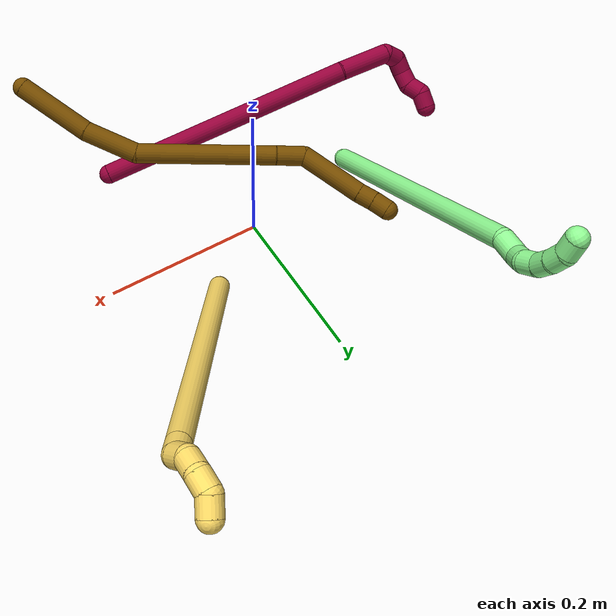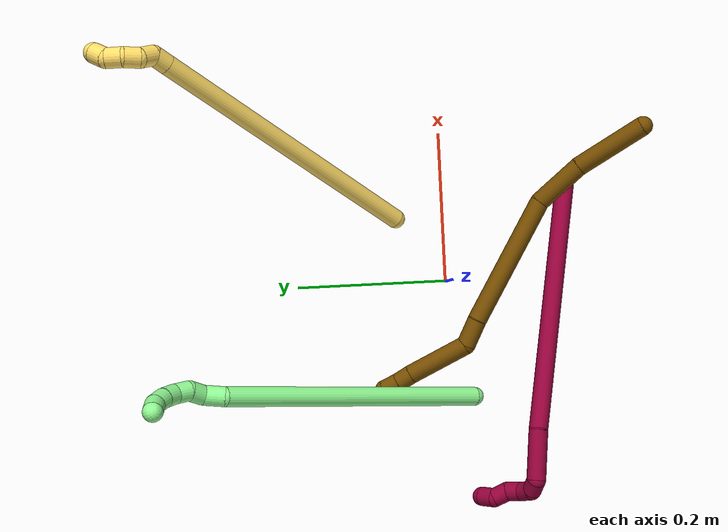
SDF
<sdf version="1.7">
 <world name="default">
  <model name="photoneo_s_sensor">
   <static>1</static>
   <pose>0 0 2 1.57079 1.57079 3.14159</pose>
   <link name="link">
    <inertial><mass>0.1</mass></inertial>
    <sensor name="sensor" type="depth">
     <update_rate>30</update_rate>
     <camera>
      <horizontal_fov>1.22</horizontal_fov>
      <image><width>1920</width><height>1200</height><format>B8G8R8</format></image>
      <clip><near>0.1</near><far>4</far></clip>
      <depth_camera><output>points</output></depth_camera>
     </camera>
     <plugin name="camera_plugin" filename="libgazebo_ros_depth_camera.so">
      <baseline>0.2</baseline>
      <alwaysOn>1</alwaysOn>
      <updateRate>0.0</updateRate>
      <cameraName>camera_ir</cameraName>
      <imageTopicName>/camera/color/image_raw</imageTopicName>
      <cameraInfoTopicName>/camera/color/camera_info</cameraInfoTopicName>
      <depthImageTopicName>/camera/depth/image_raw</depthImageTopicName>
      <depthImageCameraInfoTopicName>/camera/depth/camera_info</depthImageCameraInfoTopicName>
      <pointCloudTopicName>/camera/depth/points</pointCloudTopicName>
      <frameName>fr_optical</frameName>
      <pointCloudCutoff>0.1</pointCloudCutoff>
      <pointCloudCutoffMax>2.0</pointCloudCutoffMax>
      <distortionK1>0</distortionK1>
      <distortionK2>0</distortionK2>
      <distortionK3>0</distortionK3>
      <distortionT1>0</distortionT1>
      <distortionT2>0</distortionT2>
      <CxPrime>0</CxPrime>
      <Cx>0</Cx>
      <Cy>0</Cy>
      <focalLength>0</focalLength>
      <hackBaseline>0</hackBaseline>
     </plugin>
    </sensor>
   </link>
  </model>
  <model name="bin">
   <static>1</static>
   <link name="bottom">
    <collision name="collision-bottom">
     <pose>0 0 -0.01 0 -0 0</pose>
     <geometry><box><size>0.8 0.6 0.02</size></box></geometry>
     <surface>
      <friction><ode><mu>100</mu><mu2>100</mu2></ode></friction>
      <contact><collide_bitmask>65535</collide_bitmask></contact>
     </surface>
    </collision>
   </link>
   <link name="west_wall">
    <collision name="collision-west_wall">
     <pose>-0.41 0 0.1 0 -0 0</pose>
     <geometry><box><size>0.02 0.6 0.2</size></box></geometry>
     <surface>
      <friction><ode><mu>100</mu><mu2>100</mu2></ode></friction>
      <contact><collide_bitmask>65535</collide_bitmask></contact>
     </surface>
    </collision>
   </link>
   <link name="east_wall">
    <collision name="collision-east_wall">
     <pose>0.41 0 0.1 0 -0 0</pose>
     <geometry><box><size>0.02 0.6 0.2</size></box></geometry>
     <surface>
      <friction><ode><mu>100</mu><mu2>100</mu2></ode></friction>
      <contact><collide_bitmask>65535</collide_bitmask></contact>
     </surface>
    </collision>
   </link>
   <link name="south_wall">
    <collision name="collision-south_wall">
     <pose>0 -0.31 0.1 0 -0 0</pose>
     <geometry><box><size>0.8 0.02 0.2</size></box></geometry>
     <surface>
      <friction><ode><mu>100</mu><mu2>100</mu2></ode></friction>
      <contact><collide_bitmask>65535</collide_bitmask></contact>
     </surface>
    </collision>
   </link>
   <link name="north_wall">
    <collision name="collision-north_wall">
     <pose>0 0.31 0.1 0 -0 0</pose>
     <geometry><box><size>0.8 0.02 0.2</size></box></geometry>
     <surface>
      <friction><ode><mu>100</mu><mu2>100</mu2></ode></friction>
      <contact><collide_bitmask>65535</collide_bitmask></contact>
     </surface>
    </collision>
   </link>
  </model>
  <model name="5">
   <static>0</static>
   <link name="5">
    <collision name="collision-cylinder-e_1_1_4">
     <pose>-0.00947 -0.030676 0.196534 0.154836 -0.047575 -0.003691</pose>
     <geometry><cylinder><radius>0.0125</radius><length>0.398277</length></cylinder></geometry>
     <surface>
      <friction><ode><mu>1.16</mu><mu2>1.16</mu2><slip1>0</slip1><slip2>0</slip2></ode></friction>
      <contact><ode><kp>1e+06</kp><kd>1</kd><max_vel>0</max_vel><min_depth>0.001</min_depth></ode></contact>
     </surface>
    </collision>
    <visual name="visual-cylinder-e_1_1_4">
     <pose>-0.00947 -0.030676 0.196534 0.154836 -0.047575 -0.003691</pose>
     <geometry><cylinder><radius>0.0125</radius><length>0.398277</length></cylinder></geometry>
     <material><ambient>1 0.858824 0.4 1</ambient></material>
    </visual>
    <collision name="collision-cylinder-e_2_4_5">
     <pose>-0.019384 -0.062926 0.403156 0.154717 -0.043326 -0.003359</pose>
     <geometry><cylinder><radius>0.0125</radius><length>0.020441</length></cylinder></geometry>
     <surface>
      <friction><ode><mu>1.16</mu><mu2>1.16</mu2><slip1>0</slip1><slip2>0</slip2></ode></friction>
      <contact><ode><kp>1e+06</kp><kd>1</kd><max_vel>0</max_vel><min_depth>0.001</min_depth></ode></contact>
     </surface>
    </collision>
    <visual name="visual-cylinder-e_2_4_5">
     <pose>-0.019384 -0.062926 0.403156 0.154717 -0.043326 -0.003359</pose>
     <geometry><cylinder><radius>0.0125</radius><length>0.020441</length></cylinder></geometry>
     <material><ambient>1 0.858824 0.4 1</ambient></material>
    </visual>
    <collision name="collision-cylinder-e_3_5_6">
     <pose>-0.018775 -0.072305 0.420041 0.854497 0.10126 0.046134</pose>
     <geometry><cylinder><radius>0.0125</radius><length>0.020806</length></cylinder></geometry>
     <surface>
      <friction><ode><mu>1.16</mu><mu2>1.16</mu2><slip1>0</slip1><slip2>0</slip2></ode></friction>
      <contact><ode><kp>1e+06</kp><kd>1</kd><max_vel>0</max_vel><min_depth>0.001</min_depth></ode></contact>
     </surface>
    </collision>
    <visual name="visual-cylinder-e_3_5_6">
     <pose>-0.018775 -0.072305 0.420041 0.854497 0.10126 0.046134</pose>
     <geometry><cylinder><radius>0.0125</radius><length>0.020806</length></cylinder></geometry>
     <material><ambient>1 0.858824 0.4 1</ambient></material>
    </visual>
    <collision name="collision-cylinder-e_4_6_7">
     <pose>-0.021743 -0.085541 0.434368 0.624567 -0.408596 -0.133581</pose>
     <geometry><cylinder><radius>0.0125</radius><length>0.020234</length></cylinder></geometry>
     <surface>
      <friction><ode><mu>1.16</mu><mu2>1.16</mu2><slip1>0</slip1><slip2>0</slip2></ode></friction>
      <contact><ode><kp>1e+06</kp><kd>1</kd><max_vel>0</max_vel><min_depth>0.001</min_depth></ode></contact>
     </surface>
    </collision>
    <visual name="visual-cylinder-e_4_6_7">
     <pose>-0.021743 -0.085541 0.434368 0.624567 -0.408596 -0.133581</pose>
     <geometry><cylinder><radius>0.0125</radius><length>0.020234</length></cylinder></geometry>
     <material><ambient>1 0.858824 0.4 1</ambient></material>
    </visual>
    <collision name="collision-cylinder-e_5_7_8">
     <pose>-0.032976 -0.095634 0.447172 0.724229 -0.797524 -0.316549</pose>
     <geometry><cylinder><radius>0.0125</radius><length>0.020158</length></cylinder></geometry>
     <surface>
      <friction><ode><mu>1.16</mu><mu2>1.16</mu2><slip1>0</slip1><slip2>0</slip2></ode></friction>
      <contact><ode><kp>1e+06</kp><kd>1</kd><max_vel>0</max_vel><min_depth>0.001</min_depth></ode></contact>
     </surface>
    </collision>
    <visual name="visual-cylinder-e_5_7_8">
     <pose>-0.032976 -0.095634 0.447172 0.724229 -0.797524 -0.316549</pose>
     <geometry><cylinder><radius>0.0125</radius><length>0.020158</length></cylinder></geometry>
     <material><ambient>1 0.858824 0.4 1</ambient></material>
    </visual>
    <collision name="collision-cylinder-e_6_8_2">
     <pose>-0.0492 -0.098991 0.456678 -0.299666 -1.1139 0.187462</pose>
     <geometry><cylinder><radius>0.0125</radius><length>0.020083</length></cylinder></geometry>
     <surface>
      <friction><ode><mu>1.16</mu><mu2>1.16</mu2><slip1>0</slip1><slip2>0</slip2></ode></friction>
      <contact><ode><kp>1e+06</kp><kd>1</kd><max_vel>0</max_vel><min_depth>0.001</min_depth></ode></contact>
     </surface>
    </collision>
    <visual name="visual-cylinder-e_6_8_2">
     <pose>-0.0492 -0.098991 0.456678 -0.299666 -1.1139 0.187462</pose>
     <geometry><cylinder><radius>0.0125</radius><length>0.020083</length></cylinder></geometry>
     <material><ambient>1 0.858824 0.4 1</ambient></material>
    </visual>
    <collision name="collision-sphere-2">
     <pose>-0.058212 -0.097683 0.460911 0 -0 0</pose>
     <geometry><sphere><radius>0.0125</radius></sphere></geometry>
     <surface>
      <friction><ode><mu>1.16</mu><mu2>1.16</mu2><slip1>0</slip1><slip2>0</slip2></ode></friction>
      <contact><ode><kp>1e+06</kp><kd>1</kd><max_vel>0</max_vel><min_depth>0.001</min_depth></ode></contact>
     </surface>
    </collision>
    <visual name="visual-sphere-2">
     <pose>-0.058212 -0.097683 0.460911 0 -0 0</pose>
     <geometry><sphere><radius>0.0125</radius></sphere></geometry>
     <material><ambient>1 0.858824 0.4 1</ambient></material>
    </visual>
    <collision name="collision-sphere-4">
     <pose>-0.018941 -0.061352 0.393067 0 -0 0</pose>
     <geometry><sphere><radius>0.0125</radius></sphere></geometry>
     <surface>
      <friction><ode><mu>1.16</mu><mu2>1.16</mu2><slip1>0</slip1><slip2>0</slip2></ode></friction>
      <contact><ode><kp>1e+06</kp><kd>1</kd><max_vel>0</max_vel><min_depth>0.001</min_depth></ode></contact>
     </surface>
    </collision>
    <visual name="visual-sphere-4">
     <pose>-0.018941 -0.061352 0.393067 0 -0 0</pose>
     <geometry><sphere><radius>0.0125</radius></sphere></geometry>
     <material><ambient>1 0.858824 0.4 1</ambient></material>
    </visual>
    <collision name="collision-sphere-1">
     <geometry><sphere><radius>0.0125</radius></sphere></geometry>
     <surface>
      <friction><ode><mu>1.16</mu><mu2>1.16</mu2><slip1>0</slip1><slip2>0</slip2></ode></friction>
      <contact><ode><kp>1e+06</kp><kd>1</kd><max_vel>0</max_vel><min_depth>0.001</min_depth></ode></contact>
     </surface>
    </collision>
    <visual name="visual-sphere-1">
     <geometry><sphere><radius>0.0125</radius></sphere></geometry>
     <material><ambient>1 0.858824 0.4 1</ambient></material>
    </visual>
    <collision name="collision-sphere-8">
     <pose>-0.040188 -0.100298 0.452446 0 -0 0</pose>
     <geometry><sphere><radius>0.0125</radius></sphere></geometry>
     <surface>
      <friction><ode><mu>1.16</mu><mu2>1.16</mu2><slip1>0</slip1><slip2>0</slip2></ode></friction>
      <contact><ode><kp>1e+06</kp><kd>1</kd><max_vel>0</max_vel><min_depth>0.001</min_depth></ode></contact>
     </surface>
    </collision>
    <visual name="visual-sphere-8">
     <pose>-0.040188 -0.100298 0.452446 0 -0 0</pose>
     <geometry><sphere><radius>0.0125</radius></sphere></geometry>
     <material><ambient>1 0.858824 0.4 1</ambient></material>
    </visual>
    <collision name="collision-sphere-5">
     <pose>-0.019826 -0.064499 0.413245 0 -0 0</pose>
     <geometry><sphere><radius>0.0125</radius></sphere></geometry>
     <surface>
      <friction><ode><mu>1.16</mu><mu2>1.16</mu2><slip1>0</slip1><slip2>0</slip2></ode></friction>
      <contact><ode><kp>1e+06</kp><kd>1</kd><max_vel>0</max_vel><min_depth>0.001</min_depth></ode></contact>
     </surface>
    </collision>
    <visual name="visual-sphere-5">
     <pose>-0.019826 -0.064499 0.413245 0 -0 0</pose>
     <geometry><sphere><radius>0.0125</radius></sphere></geometry>
     <material><ambient>1 0.858824 0.4 1</ambient></material>
    </visual>
    <collision name="collision-sphere-6">
     <pose>-0.017723 -0.080112 0.426836 0 -0 0</pose>
     <geometry><sphere><radius>0.0125</radius></sphere></geometry>
     <surface>
      <friction><ode><mu>1.16</mu><mu2>1.16</mu2><slip1>0</slip1><slip2>0</slip2></ode></friction>
      <contact><ode><kp>1e+06</kp><kd>1</kd><max_vel>0</max_vel><min_depth>0.001</min_depth></ode></contact>
     </surface>
    </collision>
    <visual name="visual-sphere-6">
     <pose>-0.017723 -0.080112 0.426836 0 -0 0</pose>
     <geometry><sphere><radius>0.0125</radius></sphere></geometry>
     <material><ambient>1 0.858824 0.4 1</ambient></material>
    </visual>
    <collision name="collision-sphere-7">
     <pose>-0.025763 -0.090969 0.441899 0 -0 0</pose>
     <geometry><sphere><radius>0.0125</radius></sphere></geometry>
     <surface>
      <friction><ode><mu>1.16</mu><mu2>1.16</mu2><slip1>0</slip1><slip2>0</slip2></ode></friction>
      <contact><ode><kp>1e+06</kp><kd>1</kd><max_vel>0</max_vel><min_depth>0.001</min_depth></ode></contact>
     </surface>
    </collision>
    <visual name="visual-sphere-7">
     <pose>-0.025763 -0.090969 0.441899 0 -0 0</pose>
     <geometry><sphere><radius>0.0125</radius></sphere></geometry>
     <material><ambient>1 0.858824 0.4 1</ambient></material>
    </visual>
    <inertial>
     <pose>-0.013303 -0.04131 0.24446 0 -0 0</pose>
     <mass>0.5</mass>
     <inertia>
      <ixx>0.005256</ixx>
      <ixy>0</ixy>
      <ixz>0</ixz>
      <iyy>0.005196</iyy>
      <iyz>0</iyz>
      <izz>0.001106</izz>
     </inertia>
    </inertial>
   </link>
   <pose>0.086794 0.063991 0.011778 -0.549785 -0.843042 -1.68747</pose>
  </model>
  <model name="8">
   <static>0</static>
   <link name="8">
    <collision name="collision-cylinder-e_1_1_4">
     <pose>-0.163491 -0.023672 0.024489 0.768427 -1.3654 -0.635255</pose>
     <geometry><cylinder><radius>0.0125</radius><length>0.334003</length></cylinder></geometry>
     <surface>
      <friction><ode><mu>1.16</mu><mu2>1.16</mu2><slip1>0</slip1><slip2>0</slip2></ode></friction>
      <contact><ode><kp>1e+06</kp><kd>1</kd><max_vel>0</max_vel><min_depth>0.001</min_depth></ode></contact>
     </surface>
    </collision>
    <visual name="visual-cylinder-e_1_1_4">
     <pose>-0.163491 -0.023672 0.024489 0.768427 -1.3654 -0.635255</pose>
     <geometry><cylinder><radius>0.0125</radius><length>0.334003</length></cylinder></geometry>
     <material><ambient>0.584314 0 0.227451 1</ambient></material>
    </visual>
    <collision name="collision-cylinder-e_2_4_5">
     <pose>-0.359107 -0.047113 0.055939 -0.033098 -1.35733 0.026693</pose>
     <geometry><cylinder><radius>0.0125</radius><length>0.065741</length></cylinder></geometry>
     <surface>
      <friction><ode><mu>1.16</mu><mu2>1.16</mu2><slip1>0</slip1><slip2>0</slip2></ode></friction>
      <contact><ode><kp>1e+06</kp><kd>1</kd><max_vel>0</max_vel><min_depth>0.001</min_depth></ode></contact>
     </surface>
    </collision>
    <visual name="visual-cylinder-e_2_4_5">
     <pose>-0.359107 -0.047113 0.055939 -0.033098 -1.35733 0.026693</pose>
     <geometry><cylinder><radius>0.0125</radius><length>0.065741</length></cylinder></geometry>
     <material><ambient>0.584314 0 0.227451 1</ambient></material>
    </visual>
    <collision name="collision-cylinder-e_3_5_6">
     <pose>-0.396816 -0.044096 0.070822 -0.338245 -0.586747 0.103075</pose>
     <geometry><cylinder><radius>0.0125</radius><length>0.020173</length></cylinder></geometry>
     <surface>
      <friction><ode><mu>1.16</mu><mu2>1.16</mu2><slip1>0</slip1><slip2>0</slip2></ode></friction>
      <contact><ode><kp>1e+06</kp><kd>1</kd><max_vel>0</max_vel><min_depth>0.001</min_depth></ode></contact>
     </surface>
    </collision>
    <visual name="visual-cylinder-e_3_5_6">
     <pose>-0.396816 -0.044096 0.070822 -0.338245 -0.586747 0.103075</pose>
     <geometry><cylinder><radius>0.0125</radius><length>0.020173</length></cylinder></geometry>
     <material><ambient>0.584314 0 0.227451 1</ambient></material>
    </visual>
    <collision name="collision-cylinder-e_4_6_7">
     <pose>-0.401514 -0.040776 0.088696 -0.053467 0.088654 -0.002372</pose>
     <geometry><cylinder><radius>0.0125</radius><length>0.020009</length></cylinder></geometry>
     <surface>
      <friction><ode><mu>1.16</mu><mu2>1.16</mu2><slip1>0</slip1><slip2>0</slip2></ode></friction>
      <contact><ode><kp>1e+06</kp><kd>1</kd><max_vel>0</max_vel><min_depth>0.001</min_depth></ode></contact>
     </surface>
    </collision>
    <visual name="visual-cylinder-e_4_6_7">
     <pose>-0.401514 -0.040776 0.088696 -0.053467 0.088654 -0.002372</pose>
     <geometry><cylinder><radius>0.0125</radius><length>0.020009</length></cylinder></geometry>
     <material><ambient>0.584314 0 0.227451 1</ambient></material>
    </visual>
    <collision name="collision-cylinder-e_5_7_8">
     <pose>-0.399148 -0.043878 0.107854 0.376026 0.148433 0.028291</pose>
     <geometry><cylinder><radius>0.0125</radius><length>0.020016</length></cylinder></geometry>
     <surface>
      <friction><ode><mu>1.16</mu><mu2>1.16</mu2><slip1>0</slip1><slip2>0</slip2></ode></friction>
      <contact><ode><kp>1e+06</kp><kd>1</kd><max_vel>0</max_vel><min_depth>0.001</min_depth></ode></contact>
     </surface>
    </collision>
    <visual name="visual-cylinder-e_5_7_8">
     <pose>-0.399148 -0.043878 0.107854 0.376026 0.148433 0.028291</pose>
     <geometry><cylinder><radius>0.0125</radius><length>0.020016</length></cylinder></geometry>
     <material><ambient>0.584314 0 0.227451 1</ambient></material>
    </visual>
    <collision name="collision-cylinder-e_6_8_9">
     <pose>-0.401015 -0.052826 0.124865 0.597674 -0.340662 -0.105873</pose>
     <geometry><cylinder><radius>0.0125</radius><length>0.020036</length></cylinder></geometry>
     <surface>
      <friction><ode><mu>1.16</mu><mu2>1.16</mu2><slip1>0</slip1><slip2>0</slip2></ode></friction>
      <contact><ode><kp>1e+06</kp><kd>1</kd><max_vel>0</max_vel><min_depth>0.001</min_depth></ode></contact>
     </surface>
    </collision>
    <visual name="visual-cylinder-e_6_8_9">
     <pose>-0.401015 -0.052826 0.124865 0.597674 -0.340662 -0.105873</pose>
     <geometry><cylinder><radius>0.0125</radius><length>0.020036</length></cylinder></geometry>
     <material><ambient>0.584314 0 0.227451 1</ambient></material>
    </visual>
    <collision name="collision-cylinder-e_7_9_2">
     <pose>-0.402099 -0.060192 0.142205 0.211989 0.228057 0.024368</pose>
     <geometry><cylinder><radius>0.0125</radius><length>0.020023</length></cylinder></geometry>
     <surface>
      <friction><ode><mu>1.16</mu><mu2>1.16</mu2><slip1>0</slip1><slip2>0</slip2></ode></friction>
      <contact><ode><kp>1e+06</kp><kd>1</kd><max_vel>0</max_vel><min_depth>0.001</min_depth></ode></contact>
     </surface>
    </collision>
    <visual name="visual-cylinder-e_7_9_2">
     <pose>-0.402099 -0.060192 0.142205 0.211989 0.228057 0.024368</pose>
     <geometry><cylinder><radius>0.0125</radius><length>0.020023</length></cylinder></geometry>
     <material><ambient>0.584314 0 0.227451 1</ambient></material>
    </visual>
    <collision name="collision-sphere-2">
     <pose>-0.399836 -0.062243 0.151738 0 -0 0</pose>
     <geometry><sphere><radius>0.0125</radius></sphere></geometry>
     <surface>
      <friction><ode><mu>1.16</mu><mu2>1.16</mu2><slip1>0</slip1><slip2>0</slip2></ode></friction>
      <contact><ode><kp>1e+06</kp><kd>1</kd><max_vel>0</max_vel><min_depth>0.001</min_depth></ode></contact>
     </surface>
    </collision>
    <visual name="visual-sphere-2">
     <pose>-0.399836 -0.062243 0.151738 0 -0 0</pose>
     <geometry><sphere><radius>0.0125</radius></sphere></geometry>
     <material><ambient>0.584314 0 0.227451 1</ambient></material>
    </visual>
    <collision name="collision-sphere-9">
     <pose>-0.404363 -0.05814 0.132671 0 -0 0</pose>
     <geometry><sphere><radius>0.0125</radius></sphere></geometry>
     <surface>
      <friction><ode><mu>1.16</mu><mu2>1.16</mu2><slip1>0</slip1><slip2>0</slip2></ode></friction>
      <contact><ode><kp>1e+06</kp><kd>1</kd><max_vel>0</max_vel><min_depth>0.001</min_depth></ode></contact>
     </surface>
    </collision>
    <visual name="visual-sphere-9">
     <pose>-0.404363 -0.05814 0.132671 0 -0 0</pose>
     <geometry><sphere><radius>0.0125</radius></sphere></geometry>
     <material><ambient>0.584314 0 0.227451 1</ambient></material>
    </visual>
    <collision name="collision-sphere-4">
     <pose>-0.326982 -0.047344 0.048979 0 -0 0</pose>
     <geometry><sphere><radius>0.0125</radius></sphere></geometry>
     <surface>
      <friction><ode><mu>1.16</mu><mu2>1.16</mu2><slip1>0</slip1><slip2>0</slip2></ode></friction>
      <contact><ode><kp>1e+06</kp><kd>1</kd><max_vel>0</max_vel><min_depth>0.001</min_depth></ode></contact>
     </surface>
    </collision>
    <visual name="visual-sphere-4">
     <pose>-0.326982 -0.047344 0.048979 0 -0 0</pose>
     <geometry><sphere><radius>0.0125</radius></sphere></geometry>
     <material><ambient>0.584314 0 0.227451 1</ambient></material>
    </visual>
    <collision name="collision-sphere-1">
     <geometry><sphere><radius>0.0125</radius></sphere></geometry>
     <surface>
      <friction><ode><mu>1.16</mu><mu2>1.16</mu2><slip1>0</slip1><slip2>0</slip2></ode></friction>
      <contact><ode><kp>1e+06</kp><kd>1</kd><max_vel>0</max_vel><min_depth>0.001</min_depth></ode></contact>
     </surface>
    </collision>
    <visual name="visual-sphere-1">
     <geometry><sphere><radius>0.0125</radius></sphere></geometry>
     <material><ambient>0.584314 0 0.227451 1</ambient></material>
    </visual>
    <collision name="collision-sphere-8">
     <pose>-0.397668 -0.047513 0.11706 0 -0 0</pose>
     <geometry><sphere><radius>0.0125</radius></sphere></geometry>
     <surface>
      <friction><ode><mu>1.16</mu><mu2>1.16</mu2><slip1>0</slip1><slip2>0</slip2></ode></friction>
      <contact><ode><kp>1e+06</kp><kd>1</kd><max_vel>0</max_vel><min_depth>0.001</min_depth></ode></contact>
     </surface>
    </collision>
    <visual name="visual-sphere-8">
     <pose>-0.397668 -0.047513 0.11706 0 -0 0</pose>
     <geometry><sphere><radius>0.0125</radius></sphere></geometry>
     <material><ambient>0.584314 0 0.227451 1</ambient></material>
    </visual>
    <collision name="collision-sphere-5">
     <pose>-0.391231 -0.046883 0.062898 0 -0 0</pose>
     <geometry><sphere><radius>0.0125</radius></sphere></geometry>
     <surface>
      <friction><ode><mu>1.16</mu><mu2>1.16</mu2><slip1>0</slip1><slip2>0</slip2></ode></friction>
      <contact><ode><kp>1e+06</kp><kd>1</kd><max_vel>0</max_vel><min_depth>0.001</min_depth></ode></contact>
     </surface>
    </collision>
    <visual name="visual-sphere-5">
     <pose>-0.391231 -0.046883 0.062898 0 -0 0</pose>
     <geometry><sphere><radius>0.0125</radius></sphere></geometry>
     <material><ambient>0.584314 0 0.227451 1</ambient></material>
    </visual>
    <collision name="collision-sphere-6">
     <pose>-0.4024 -0.041308 0.078746 0 -0 0</pose>
     <geometry><sphere><radius>0.0125</radius></sphere></geometry>
     <surface>
      <friction><ode><mu>1.16</mu><mu2>1.16</mu2><slip1>0</slip1><slip2>0</slip2></ode></friction>
      <contact><ode><kp>1e+06</kp><kd>1</kd><max_vel>0</max_vel><min_depth>0.001</min_depth></ode></contact>
     </surface>
    </collision>
    <visual name="visual-sphere-6">
     <pose>-0.4024 -0.041308 0.078746 0 -0 0</pose>
     <geometry><sphere><radius>0.0125</radius></sphere></geometry>
     <material><ambient>0.584314 0 0.227451 1</ambient></material>
    </visual>
    <collision name="collision-sphere-7">
     <pose>-0.400628 -0.040243 0.098647 0 -0 0</pose>
     <geometry><sphere><radius>0.0125</radius></sphere></geometry>
     <surface>
      <friction><ode><mu>1.16</mu><mu2>1.16</mu2><slip1>0</slip1><slip2>0</slip2></ode></friction>
      <contact><ode><kp>1e+06</kp><kd>1</kd><max_vel>0</max_vel><min_depth>0.001</min_depth></ode></contact>
     </surface>
    </collision>
    <visual name="visual-sphere-7">
     <pose>-0.400628 -0.040243 0.098647 0 -0 0</pose>
     <geometry><sphere><radius>0.0125</radius></sphere></geometry>
     <material><ambient>0.584314 0 0.227451 1</ambient></material>
    </visual>
    <inertial>
     <pose>-0.236657 -0.031702 0.045137 0 -0 0</pose>
     <mass>0.5</mass>
     <inertia>
      <ixx>0.000116</ixx>
      <ixy>0</ixy>
      <ixz>0</ixz>
      <iyy>0.002715</iyy>
      <iyz>0</iyz>
      <izz>0.003534</izz>
     </inertia>
    </inertial>
   </link>
   <pose>0.122266 -0.165405 0.011499 -2.45515 0.251722 0.028037</pose>
  </model>
  <model name="12">
   <static>0</static>
   <link name="12">
    <collision name="collision-cylinder-e_1_1_4">
     <pose>-0.009676 0.041114 -0.022888 -2.07877 -0.202807 0.342811</pose>
     <geometry><cylinder><radius>0.0125</radius><length>0.09608</length></cylinder></geometry>
     <surface>
      <friction><ode><mu>1.16</mu><mu2>1.16</mu2><slip1>0</slip1><slip2>0</slip2></ode></friction>
      <contact><ode><kp>1e+06</kp><kd>1</kd><max_vel>0</max_vel><min_depth>0.001</min_depth></ode></contact>
     </surface>
    </collision>
    <visual name="visual-cylinder-e_1_1_4">
     <pose>-0.009676 0.041114 -0.022888 -2.07877 -0.202807 0.342811</pose>
     <geometry><cylinder><radius>0.0125</radius><length>0.09608</length></cylinder></geometry>
     <material><ambient>0.466667 0.301961 0 1</ambient></material>
    </visual>
    <collision name="collision-cylinder-e_2_4_5">
     <pose>-0.0238 0.108509 -0.067383 -2.25888 -0.129978 0.273786</pose>
     <geometry><cylinder><radius>0.0125</radius><length>0.068625</length></cylinder></geometry>
     <surface>
      <friction><ode><mu>1.16</mu><mu2>1.16</mu2><slip1>0</slip1><slip2>0</slip2></ode></friction>
      <contact><ode><kp>1e+06</kp><kd>1</kd><max_vel>0</max_vel><min_depth>0.001</min_depth></ode></contact>
     </surface>
    </collision>
    <visual name="visual-cylinder-e_2_4_5">
     <pose>-0.0238 0.108509 -0.067383 -2.25888 -0.129978 0.273786</pose>
     <geometry><cylinder><radius>0.0125</radius><length>0.068625</length></cylinder></geometry>
     <material><ambient>0.466667 0.301961 0 1</ambient></material>
    </visual>
    <collision name="collision-cylinder-e_3_5_6">
     <pose>-0.025454 0.177621 -0.164755 -2.62708 0.032077 -0.121786</pose>
     <geometry><cylinder><radius>0.0125</radius><length>0.174157</length></cylinder></geometry>
     <surface>
      <friction><ode><mu>1.16</mu><mu2>1.16</mu2><slip1>0</slip1><slip2>0</slip2></ode></friction>
      <contact><ode><kp>1e+06</kp><kd>1</kd><max_vel>0</max_vel><min_depth>0.001</min_depth></ode></contact>
     </surface>
    </collision>
    <visual name="visual-cylinder-e_3_5_6">
     <pose>-0.025454 0.177621 -0.164755 -2.62708 0.032077 -0.121786</pose>
     <geometry><cylinder><radius>0.0125</radius><length>0.174157</length></cylinder></geometry>
     <material><ambient>0.466667 0.301961 0 1</ambient></material>
    </visual>
    <collision name="collision-cylinder-e_4_6_7">
     <pose>-0.020159 0.229773 -0.255767 -2.5928 0.139142 -0.485333</pose>
     <geometry><cylinder><radius>0.0125</radius><length>0.036089</length></cylinder></geometry>
     <surface>
      <friction><ode><mu>1.16</mu><mu2>1.16</mu2><slip1>0</slip1><slip2>0</slip2></ode></friction>
      <contact><ode><kp>1e+06</kp><kd>1</kd><max_vel>0</max_vel><min_depth>0.001</min_depth></ode></contact>
     </surface>
    </collision>
    <visual name="visual-cylinder-e_4_6_7">
     <pose>-0.020159 0.229773 -0.255767 -2.5928 0.139142 -0.485333</pose>
     <geometry><cylinder><radius>0.0125</radius><length>0.036089</length></cylinder></geometry>
     <material><ambient>0.466667 0.301961 0 1</ambient></material>
    </visual>
    <collision name="collision-cylinder-e_5_7_8">
     <pose>-0.030225 0.273167 -0.291465 -2.11141 -0.306329 0.532481</pose>
     <geometry><cylinder><radius>0.0125</radius><length>0.083358</length></cylinder></geometry>
     <surface>
      <friction><ode><mu>1.16</mu><mu2>1.16</mu2><slip1>0</slip1><slip2>0</slip2></ode></friction>
      <contact><ode><kp>1e+06</kp><kd>1</kd><max_vel>0</max_vel><min_depth>0.001</min_depth></ode></contact>
     </surface>
    </collision>
    <visual name="visual-cylinder-e_5_7_8">
     <pose>-0.030225 0.273167 -0.291465 -2.11141 -0.306329 0.532481</pose>
     <geometry><cylinder><radius>0.0125</radius><length>0.083358</length></cylinder></geometry>
     <material><ambient>0.466667 0.301961 0 1</ambient></material>
    </visual>
    <collision name="collision-cylinder-e_6_8_9">
     <pose>-0.045829 0.315151 -0.317777 -2.20824 -0.299063 0.58116</pose>
     <geometry><cylinder><radius>0.0125</radius><length>0.020607</length></cylinder></geometry>
     <surface>
      <friction><ode><mu>1.16</mu><mu2>1.16</mu2><slip1>0</slip1><slip2>0</slip2></ode></friction>
      <contact><ode><kp>1e+06</kp><kd>1</kd><max_vel>0</max_vel><min_depth>0.001</min_depth></ode></contact>
     </surface>
    </collision>
    <visual name="visual-cylinder-e_6_8_9">
     <pose>-0.045829 0.315151 -0.317777 -2.20824 -0.299063 0.58116</pose>
     <geometry><cylinder><radius>0.0125</radius><length>0.020607</length></cylinder></geometry>
     <material><ambient>0.466667 0.301961 0 1</ambient></material>
    </visual>
    <collision name="collision-cylinder-e_7_9_2">
     <pose>-0.052555 0.33139 -0.328947 -2.13851 -0.357562 0.636738</pose>
     <geometry><cylinder><radius>0.0125</radius><length>0.021084</length></cylinder></geometry>
     <surface>
      <friction><ode><mu>1.16</mu><mu2>1.16</mu2><slip1>0</slip1><slip2>0</slip2></ode></friction>
      <contact><ode><kp>1e+06</kp><kd>1</kd><max_vel>0</max_vel><min_depth>0.001</min_depth></ode></contact>
     </surface>
    </collision>
    <visual name="visual-cylinder-e_7_9_2">
     <pose>-0.052555 0.33139 -0.328947 -2.13851 -0.357562 0.636738</pose>
     <geometry><cylinder><radius>0.0125</radius><length>0.021084</length></cylinder></geometry>
     <material><ambient>0.466667 0.301961 0 1</ambient></material>
    </visual>
    <collision name="collision-sphere-2">
     <pose>-0.056244 0.339716 -0.334257 0 -0 0</pose>
     <geometry><sphere><radius>0.0125</radius></sphere></geometry>
     <surface>
      <friction><ode><mu>1.16</mu><mu2>1.16</mu2><slip1>0</slip1><slip2>0</slip2></ode></friction>
      <contact><ode><kp>1e+06</kp><kd>1</kd><max_vel>0</max_vel><min_depth>0.001</min_depth></ode></contact>
     </surface>
    </collision>
    <visual name="visual-sphere-2">
     <pose>-0.056244 0.339716 -0.334257 0 -0 0</pose>
     <geometry><sphere><radius>0.0125</radius></sphere></geometry>
     <material><ambient>0.466667 0.301961 0 1</ambient></material>
    </visual>
    <collision name="collision-sphere-9">
     <pose>-0.048865 0.323063 -0.323637 0 -0 0</pose>
     <geometry><sphere><radius>0.0125</radius></sphere></geometry>
     <surface>
      <friction><ode><mu>1.16</mu><mu2>1.16</mu2><slip1>0</slip1><slip2>0</slip2></ode></friction>
      <contact><ode><kp>1e+06</kp><kd>1</kd><max_vel>0</max_vel><min_depth>0.001</min_depth></ode></contact>
     </surface>
    </collision>
    <visual name="visual-sphere-9">
     <pose>-0.048865 0.323063 -0.323637 0 -0 0</pose>
     <geometry><sphere><radius>0.0125</radius></sphere></geometry>
     <material><ambient>0.466667 0.301961 0 1</ambient></material>
    </visual>
    <collision name="collision-sphere-4">
     <pose>-0.019352 0.082228 -0.045777 0 -0 0</pose>
     <geometry><sphere><radius>0.0125</radius></sphere></geometry>
     <surface>
      <friction><ode><mu>1.16</mu><mu2>1.16</mu2><slip1>0</slip1><slip2>0</slip2></ode></friction>
      <contact><ode><kp>1e+06</kp><kd>1</kd><max_vel>0</max_vel><min_depth>0.001</min_depth></ode></contact>
     </surface>
    </collision>
    <visual name="visual-sphere-4">
     <pose>-0.019352 0.082228 -0.045777 0 -0 0</pose>
     <geometry><sphere><radius>0.0125</radius></sphere></geometry>
     <material><ambient>0.466667 0.301961 0 1</ambient></material>
    </visual>
    <collision name="collision-sphere-1">
     <geometry><sphere><radius>0.0125</radius></sphere></geometry>
     <surface>
      <friction><ode><mu>1.16</mu><mu2>1.16</mu2><slip1>0</slip1><slip2>0</slip2></ode></friction>
      <contact><ode><kp>1e+06</kp><kd>1</kd><max_vel>0</max_vel><min_depth>0.001</min_depth></ode></contact>
     </surface>
    </collision>
    <visual name="visual-sphere-1">
     <geometry><sphere><radius>0.0125</radius></sphere></geometry>
     <material><ambient>0.466667 0.301961 0 1</ambient></material>
    </visual>
    <collision name="collision-sphere-8">
     <pose>-0.042794 0.307238 -0.311917 0 -0 0</pose>
     <geometry><sphere><radius>0.0125</radius></sphere></geometry>
     <surface>
      <friction><ode><mu>1.16</mu><mu2>1.16</mu2><slip1>0</slip1><slip2>0</slip2></ode></friction>
      <contact><ode><kp>1e+06</kp><kd>1</kd><max_vel>0</max_vel><min_depth>0.001</min_depth></ode></contact>
     </surface>
    </collision>
    <visual name="visual-sphere-8">
     <pose>-0.042794 0.307238 -0.311917 0 -0 0</pose>
     <geometry><sphere><radius>0.0125</radius></sphere></geometry>
     <material><ambient>0.466667 0.301961 0 1</ambient></material>
    </visual>
    <collision name="collision-sphere-5">
     <pose>-0.028247 0.134791 -0.08899 0 -0 0</pose>
     <geometry><sphere><radius>0.0125</radius></sphere></geometry>
     <surface>
      <friction><ode><mu>1.16</mu><mu2>1.16</mu2><slip1>0</slip1><slip2>0</slip2></ode></friction>
      <contact><ode><kp>1e+06</kp><kd>1</kd><max_vel>0</max_vel><min_depth>0.001</min_depth></ode></contact>
     </surface>
    </collision>
    <visual name="visual-sphere-5">
     <pose>-0.028247 0.134791 -0.08899 0 -0 0</pose>
     <geometry><sphere><radius>0.0125</radius></sphere></geometry>
     <material><ambient>0.466667 0.301961 0 1</ambient></material>
    </visual>
    <collision name="collision-sphere-6">
     <pose>-0.022662 0.220451 -0.240521 0 -0 0</pose>
     <geometry><sphere><radius>0.0125</radius></sphere></geometry>
     <surface>
      <friction><ode><mu>1.16</mu><mu2>1.16</mu2><slip1>0</slip1><slip2>0</slip2></ode></friction>
      <contact><ode><kp>1e+06</kp><kd>1</kd><max_vel>0</max_vel><min_depth>0.001</min_depth></ode></contact>
     </surface>
    </collision>
    <visual name="visual-sphere-6">
     <pose>-0.022662 0.220451 -0.240521 0 -0 0</pose>
     <geometry><sphere><radius>0.0125</radius></sphere></geometry>
     <material><ambient>0.466667 0.301961 0 1</ambient></material>
    </visual>
    <collision name="collision-sphere-7">
     <pose>-0.017656 0.239095 -0.271013 0 -0 0</pose>
     <geometry><sphere><radius>0.0125</radius></sphere></geometry>
     <surface>
      <friction><ode><mu>1.16</mu><mu2>1.16</mu2><slip1>0</slip1><slip2>0</slip2></ode></friction>
      <contact><ode><kp>1e+06</kp><kd>1</kd><max_vel>0</max_vel><min_depth>0.001</min_depth></ode></contact>
     </surface>
    </collision>
    <visual name="visual-sphere-7">
     <pose>-0.017656 0.239095 -0.271013 0 -0 0</pose>
     <geometry><sphere><radius>0.0125</radius></sphere></geometry>
     <material><ambient>0.466667 0.301961 0 1</ambient></material>
    </visual>
    <inertial>
     <pose>-0.024591 0.17375 -0.165054 0 -0 0</pose>
     <mass>0.5</mass>
     <inertia>
      <ixx>0.000592</ixx>
      <ixy>0</ixy>
      <ixz>0</ixz>
      <iyy>-0.000425</iyy>
      <iyz>0</iyz>
      <izz>-0.000361</izz>
     </inertia>
    </inertial>
   </link>
   <pose>0.183519 -0.254353 0.124951 -2.06969 0.591075 -2.12238</pose>
  </model>
  <model name="13">
   <static>0</static>
   <link name="13">
    <collision name="collision-cylinder-e_1_1_4">
     <pose>0.012425 0.181665 -0.038449 -1.77937 0.066814 -0.082419</pose>
     <geometry><cylinder><radius>0.0125</radius><length>0.372209</length></cylinder></geometry>
     <surface>
      <friction><ode><mu>1.16</mu><mu2>1.16</mu2><slip1>0</slip1><slip2>0</slip2></ode></friction>
      <contact><ode><kp>1e+06</kp><kd>1</kd><max_vel>0</max_vel><min_depth>0.001</min_depth></ode></contact>
     </surface>
    </collision>
    <visual name="visual-cylinder-e_1_1_4">
     <pose>0.012425 0.181665 -0.038449 -1.77937 0.066814 -0.082419</pose>
     <geometry><cylinder><radius>0.0125</radius><length>0.372209</length></cylinder></geometry>
     <material><ambient>0.564706 0.984314 0.572549 1</ambient></material>
    </visual>
    <collision name="collision-cylinder-e_2_4_5">
     <pose>0.027298 0.373878 -0.08457 -2.19964 0.185539 -0.361441</pose>
     <geometry><cylinder><radius>0.0125</radius><length>0.026541</length></cylinder></geometry>
     <surface>
      <friction><ode><mu>1.16</mu><mu2>1.16</mu2><slip1>0</slip1><slip2>0</slip2></ode></friction>
      <contact><ode><kp>1e+06</kp><kd>1</kd><max_vel>0</max_vel><min_depth>0.001</min_depth></ode></contact>
     </surface>
    </collision>
    <visual name="visual-cylinder-e_2_4_5">
     <pose>0.027298 0.373878 -0.08457 -2.19964 0.185539 -0.361441</pose>
     <geometry><cylinder><radius>0.0125</radius><length>0.026541</length></cylinder></geometry>
     <material><ambient>0.564706 0.984314 0.572549 1</ambient></material>
    </visual>
    <collision name="collision-cylinder-e_3_5_6">
     <pose>0.032847 0.394395 -0.092438 -1.59047 0.301515 -0.307413</pose>
     <geometry><cylinder><radius>0.0125</radius><length>0.020884</length></cylinder></geometry>
     <surface>
      <friction><ode><mu>1.16</mu><mu2>1.16</mu2><slip1>0</slip1><slip2>0</slip2></ode></friction>
      <contact><ode><kp>1e+06</kp><kd>1</kd><max_vel>0</max_vel><min_depth>0.001</min_depth></ode></contact>
     </surface>
    </collision>
    <visual name="visual-cylinder-e_3_5_6">
     <pose>0.032847 0.394395 -0.092438 -1.59047 0.301515 -0.307413</pose>
     <geometry><cylinder><radius>0.0125</radius><length>0.020884</length></cylinder></geometry>
     <material><ambient>0.564706 0.984314 0.572549 1</ambient></material>
    </visual>
    <collision name="collision-cylinder-e_4_6_7">
     <pose>0.034571 0.414179 -0.094333 -1.74221 -0.137379 0.163098</pose>
     <geometry><cylinder><radius>0.0125</radius><length>0.020111</length></cylinder></geometry>
     <surface>
      <friction><ode><mu>1.16</mu><mu2>1.16</mu2><slip1>0</slip1><slip2>0</slip2></ode></friction>
      <contact><ode><kp>1e+06</kp><kd>1</kd><max_vel>0</max_vel><min_depth>0.001</min_depth></ode></contact>
     </surface>
    </collision>
    <visual name="visual-cylinder-e_4_6_7">
     <pose>0.034571 0.414179 -0.094333 -1.74221 -0.137379 0.163098</pose>
     <geometry><cylinder><radius>0.0125</radius><length>0.020111</length></cylinder></geometry>
     <material><ambient>0.564706 0.984314 0.572549 1</ambient></material>
    </visual>
    <collision name="collision-cylinder-e_5_7_8">
     <pose>0.030918 0.433662 -0.094161 -1.3796 -0.227135 0.187644</pose>
     <geometry><cylinder><radius>0.0125</radius><length>0.020216</length></cylinder></geometry>
     <surface>
      <friction><ode><mu>1.16</mu><mu2>1.16</mu2><slip1>0</slip1><slip2>0</slip2></ode></friction>
      <contact><ode><kp>1e+06</kp><kd>1</kd><max_vel>0</max_vel><min_depth>0.001</min_depth></ode></contact>
     </surface>
    </collision>
    <visual name="visual-cylinder-e_5_7_8">
     <pose>0.030918 0.433662 -0.094161 -1.3796 -0.227135 0.187644</pose>
     <geometry><cylinder><radius>0.0125</radius><length>0.020216</length></cylinder></geometry>
     <material><ambient>0.564706 0.984314 0.572549 1</ambient></material>
    </visual>
    <collision name="collision-cylinder-e_6_8_9">
     <pose>0.024868 0.452135 -0.089404 -1.2541 -0.386875 0.281998</pose>
     <geometry><cylinder><radius>0.0125</radius><length>0.020007</length></cylinder></geometry>
     <surface>
      <friction><ode><mu>1.16</mu><mu2>1.16</mu2><slip1>0</slip1><slip2>0</slip2></ode></friction>
      <contact><ode><kp>1e+06</kp><kd>1</kd><max_vel>0</max_vel><min_depth>0.001</min_depth></ode></contact>
     </surface>
    </collision>
    <visual name="visual-cylinder-e_6_8_9">
     <pose>0.024868 0.452135 -0.089404 -1.2541 -0.386875 0.281998</pose>
     <geometry><cylinder><radius>0.0125</radius><length>0.020007</length></cylinder></geometry>
     <material><ambient>0.564706 0.984314 0.572549 1</ambient></material>
    </visual>
    <collision name="collision-cylinder-e_7_9_2">
     <pose>0.016192 0.467421 -0.080665 -0.836363 -0.511305 0.231267</pose>
     <geometry><cylinder><radius>0.0125</radius><length>0.020032</length></cylinder></geometry>
     <surface>
      <friction><ode><mu>1.16</mu><mu2>1.16</mu2><slip1>0</slip1><slip2>0</slip2></ode></friction>
      <contact><ode><kp>1e+06</kp><kd>1</kd><max_vel>0</max_vel><min_depth>0.001</min_depth></ode></contact>
     </surface>
    </collision>
    <visual name="visual-cylinder-e_7_9_2">
     <pose>0.016192 0.467421 -0.080665 -0.836363 -0.511305 0.231267</pose>
     <geometry><cylinder><radius>0.0125</radius><length>0.020032</length></cylinder></geometry>
     <material><ambient>0.564706 0.984314 0.572549 1</ambient></material>
    </visual>
    <collision name="collision-sphere-2">
     <pose>0.011291 0.473904 -0.074811 0 -0 0</pose>
     <geometry><sphere><radius>0.0125</radius></sphere></geometry>
     <surface>
      <friction><ode><mu>1.16</mu><mu2>1.16</mu2><slip1>0</slip1><slip2>0</slip2></ode></friction>
      <contact><ode><kp>1e+06</kp><kd>1</kd><max_vel>0</max_vel><min_depth>0.001</min_depth></ode></contact>
     </surface>
    </collision>
    <visual name="visual-sphere-2">
     <pose>0.011291 0.473904 -0.074811 0 -0 0</pose>
     <geometry><sphere><radius>0.0125</radius></sphere></geometry>
     <material><ambient>0.564706 0.984314 0.572549 1</ambient></material>
    </visual>
    <collision name="collision-sphere-9">
     <pose>0.021093 0.460938 -0.086519 0 -0 0</pose>
     <geometry><sphere><radius>0.0125</radius></sphere></geometry>
     <surface>
      <friction><ode><mu>1.16</mu><mu2>1.16</mu2><slip1>0</slip1><slip2>0</slip2></ode></friction>
      <contact><ode><kp>1e+06</kp><kd>1</kd><max_vel>0</max_vel><min_depth>0.001</min_depth></ode></contact>
     </surface>
    </collision>
    <visual name="visual-sphere-9">
     <pose>0.021093 0.460938 -0.086519 0 -0 0</pose>
     <geometry><sphere><radius>0.0125</radius></sphere></geometry>
     <material><ambient>0.564706 0.984314 0.572549 1</ambient></material>
    </visual>
    <collision name="collision-sphere-4">
     <pose>0.02485 0.36333 -0.076898 0 -0 0</pose>
     <geometry><sphere><radius>0.0125</radius></sphere></geometry>
     <surface>
      <friction><ode><mu>1.16</mu><mu2>1.16</mu2><slip1>0</slip1><slip2>0</slip2></ode></friction>
      <contact><ode><kp>1e+06</kp><kd>1</kd><max_vel>0</max_vel><min_depth>0.001</min_depth></ode></contact>
     </surface>
    </collision>
    <visual name="visual-sphere-4">
     <pose>0.02485 0.36333 -0.076898 0 -0 0</pose>
     <geometry><sphere><radius>0.0125</radius></sphere></geometry>
     <material><ambient>0.564706 0.984314 0.572549 1</ambient></material>
    </visual>
    <collision name="collision-sphere-1">
     <geometry><sphere><radius>0.0125</radius></sphere></geometry>
     <surface>
      <friction><ode><mu>1.16</mu><mu2>1.16</mu2><slip1>0</slip1><slip2>0</slip2></ode></friction>
      <contact><ode><kp>1e+06</kp><kd>1</kd><max_vel>0</max_vel><min_depth>0.001</min_depth></ode></contact>
     </surface>
    </collision>
    <visual name="visual-sphere-1">
     <geometry><sphere><radius>0.0125</radius></sphere></geometry>
     <material><ambient>0.564706 0.984314 0.572549 1</ambient></material>
    </visual>
    <collision name="collision-sphere-8">
     <pose>0.028642 0.443331 -0.092289 0 -0 0</pose>
     <geometry><sphere><radius>0.0125</radius></sphere></geometry>
     <surface>
      <friction><ode><mu>1.16</mu><mu2>1.16</mu2><slip1>0</slip1><slip2>0</slip2></ode></friction>
      <contact><ode><kp>1e+06</kp><kd>1</kd><max_vel>0</max_vel><min_depth>0.001</min_depth></ode></contact>
     </surface>
    </collision>
    <visual name="visual-sphere-8">
     <pose>0.028642 0.443331 -0.092289 0 -0 0</pose>
     <geometry><sphere><radius>0.0125</radius></sphere></geometry>
     <material><ambient>0.564706 0.984314 0.572549 1</ambient></material>
    </visual>
    <collision name="collision-sphere-5">
     <pose>0.029746 0.384426 -0.092242 0 -0 0</pose>
     <geometry><sphere><radius>0.0125</radius></sphere></geometry>
     <surface>
      <friction><ode><mu>1.16</mu><mu2>1.16</mu2><slip1>0</slip1><slip2>0</slip2></ode></friction>
      <contact><ode><kp>1e+06</kp><kd>1</kd><max_vel>0</max_vel><min_depth>0.001</min_depth></ode></contact>
     </surface>
    </collision>
    <visual name="visual-sphere-5">
     <pose>0.029746 0.384426 -0.092242 0 -0 0</pose>
     <geometry><sphere><radius>0.0125</radius></sphere></geometry>
     <material><ambient>0.564706 0.984314 0.572549 1</ambient></material>
    </visual>
    <collision name="collision-sphere-6">
     <pose>0.035948 0.404364 -0.092634 0 -0 0</pose>
     <geometry><sphere><radius>0.0125</radius></sphere></geometry>
     <surface>
      <friction><ode><mu>1.16</mu><mu2>1.16</mu2><slip1>0</slip1><slip2>0</slip2></ode></friction>
      <contact><ode><kp>1e+06</kp><kd>1</kd><max_vel>0</max_vel><min_depth>0.001</min_depth></ode></contact>
     </surface>
    </collision>
    <visual name="visual-sphere-6">
     <pose>0.035948 0.404364 -0.092634 0 -0 0</pose>
     <geometry><sphere><radius>0.0125</radius></sphere></geometry>
     <material><ambient>0.564706 0.984314 0.572549 1</ambient></material>
    </visual>
    <collision name="collision-sphere-7">
     <pose>0.033194 0.423993 -0.096032 0 -0 0</pose>
     <geometry><sphere><radius>0.0125</radius></sphere></geometry>
     <surface>
      <friction><ode><mu>1.16</mu><mu2>1.16</mu2><slip1>0</slip1><slip2>0</slip2></ode></friction>
      <contact><ode><kp>1e+06</kp><kd>1</kd><max_vel>0</max_vel><min_depth>0.001</min_depth></ode></contact>
     </surface>
    </collision>
    <visual name="visual-sphere-7">
     <pose>0.033194 0.423993 -0.096032 0 -0 0</pose>
     <geometry><sphere><radius>0.0125</radius></sphere></geometry>
     <material><ambient>0.564706 0.984314 0.572549 1</ambient></material>
    </visual>
    <inertial>
     <pose>0.016355 0.242565 -0.051383 0 -0 0</pose>
     <mass>0.5</mass>
     <inertia>
      <ixx>0.003943</ixx>
      <ixy>0</ixy>
      <ixz>0</ixz>
      <iyy>-0.001183</iyy>
      <iyz>0</iyz>
      <izz>-0.00451</izz>
     </inertia>
    </inertial>
   </link>
   <pose>-0.156708 -0.030106 0.011496 0.788034 0.138399 0.080053</pose>
  </model>
 </world>
</sdf>
